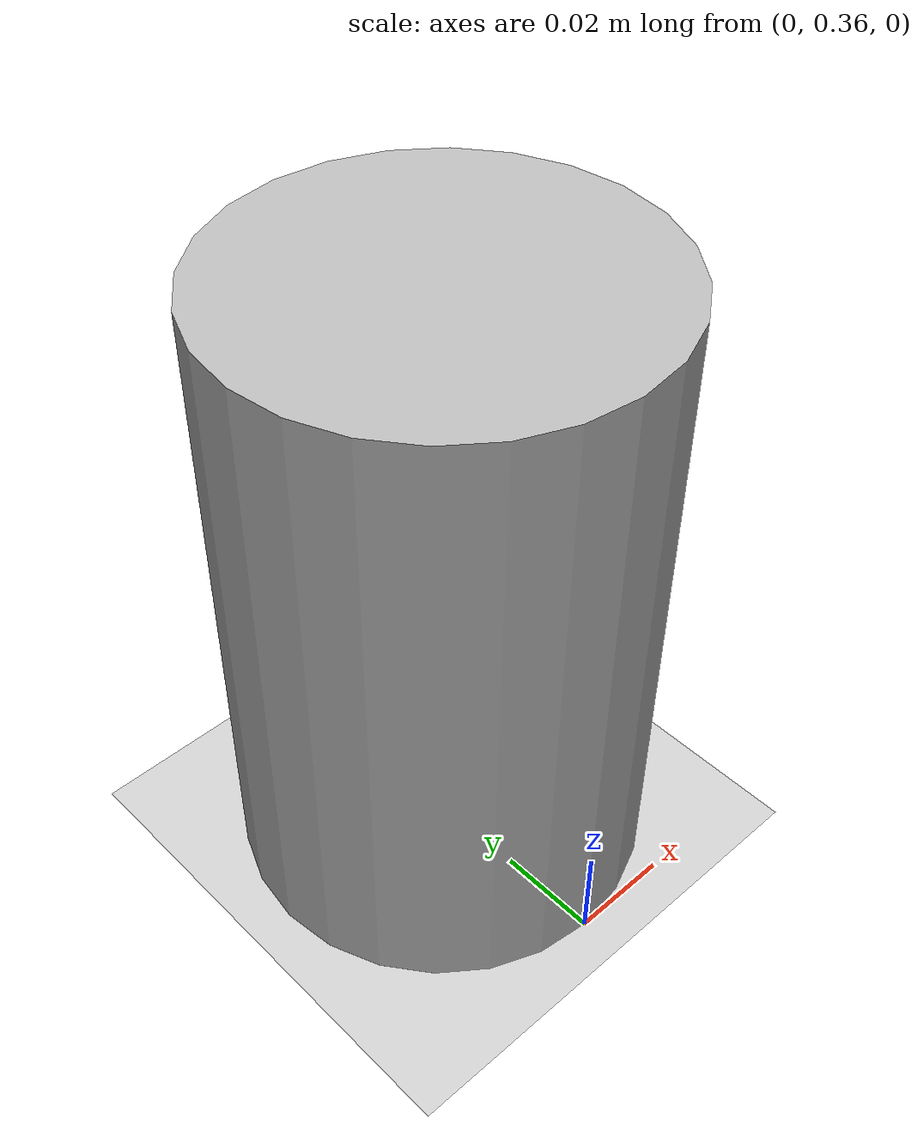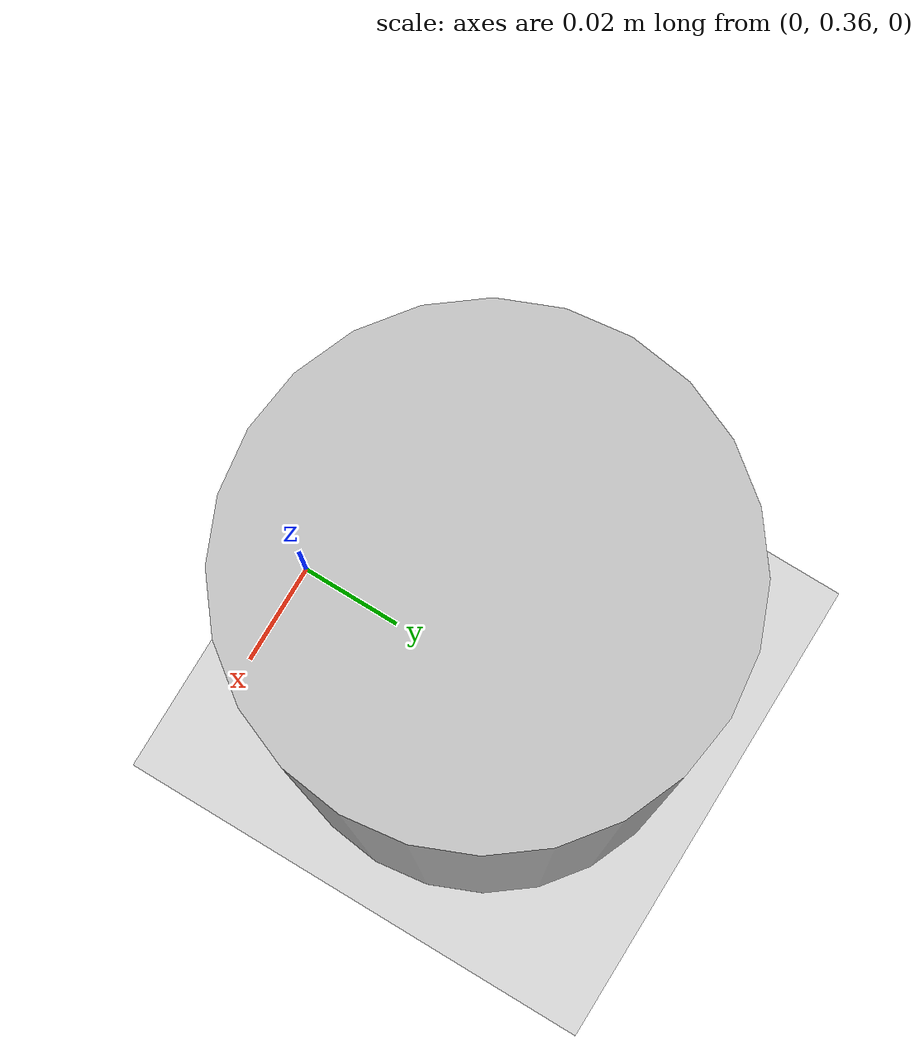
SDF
<?xml version="1.0"?>
<sdf version="1.6">
  <world name="default">
    <gui>
      <camera name="user_default">
        <pose>2.6 1.25 1.22 0 0.4 -2.93</pose>
      </camera>
    </gui>

    <light name="light0" type="directional">
      <pose frame="">0 -18.818 8 0.75 -0 0</pose>
      <diffuse>0.5 0.5 0.5 1</diffuse>
      <specular>0.1 0.1 0.1 1</specular>
      <direction>0.1 0.1 -0.9</direction>
      <attenuation>
        <range>20</range>
        <constant>0.5</constant>
        <linear>0.01</linear>
        <quadratic>0.001</quadratic>
      </attenuation>
      <cast_shadows>0</cast_shadows>
    </light>

    <include>
      <uri>model://ground_plane</uri>
    </include>

    <light name="light3" type="directional">
      <pose frame="">3.9239 1.64974 4 0 1.2 0</pose>
      <diffuse>0.5 0.5 0.5 1</diffuse>
      <specular>0.1 0.1 0.1 1</specular>
      <direction>0.1 0.1 -0.9</direction>
      <attenuation>
        <range>20</range>
        <constant>0.5</constant>
        <linear>0.01</linear>
        <quadratic>0.001</quadratic>
      </attenuation>
      <cast_shadows>0</cast_shadows>
    </light>

    <light name="light5" type="directional">
      <pose frame="">0.454419 12.4783 5 -0.8 0 0</pose>
      <diffuse>0.5 0.5 0.5 1</diffuse>
      <specular>0.1 0.1 0.1 1</specular>
      <direction>0.1 0.1 -0.9</direction>
      <attenuation>
        <range>20</range>
        <constant>0.5</constant>
        <linear>0.01</linear>
        <quadratic>0.001</quadratic>
      </attenuation>
      <cast_shadows>0</cast_shadows>
    </light>

    <scene>
      <shadows>true</shadows>
      <ambient>0.5 0.5 0.5 1.0</ambient>
      <grid>false</grid>
      <sky>
        <time>22</time>
        <sunrise>20</sunrise>
        <sunset>21</sunset>
        <clouds>
          <humidity>0</humidity>
        </clouds>
      </sky>
    </scene>

    <model name="cylinder">
      <static>false</static>
      <pose>0.0 0.4 0.0625 0 -0 0</pose>
      <link name="link">
        <gravity>1</gravity>
        <inertial>
          <mass>1.0</mass>
          <inertia>
            <ixx>0.0833333</ixx>
            <ixy>0</ixy>
            <ixz>0</ixz>
            <iyy>0.0833333</iyy>
            <iyz>0</iyz>
            <izz>0.0833333</izz>
          </inertia>
        </inertial>

        <collision name='collision'>
          <geometry>
            <cylinder>
              <radius>0.04</radius>
              <length>0.125</length>
            </cylinder>
          </geometry>
          <surface>
            <friction>
              <mu1>1000</mu1>
              <mu2>1000</mu2>
              <kp>1000000.0</kp>
              <kd>100000.0</kd>
              <slip1>0</slip1>
              <slip2>0</slip2>
              <minDepth>0.001</minDepth>
              <maxVel>0</maxVel>
              <torsional>
                <ode>
                  <coefficient>1000</coefficient>
                  <slip>0</slip>
                </ode>
              </torsional>
            </friction>
          </surface>
        </collision>

        <visual name='visual'>
          <geometry>
            <cylinder>
              <radius>0.04</radius>
              <length>0.125</length>
            </cylinder>
          </geometry>
          <material>
            <script>
              <uri>Gazebo/White</uri>
            </script>
          </material>
        </visual>
      </link>
    </model>

  </world>
</sdf>
